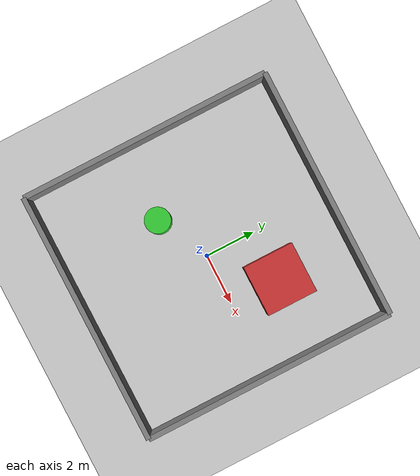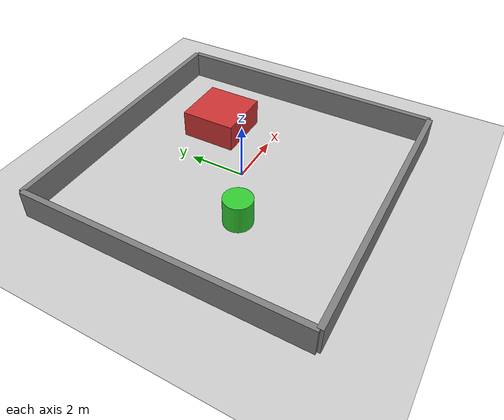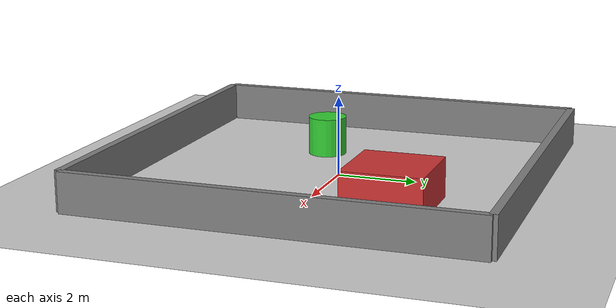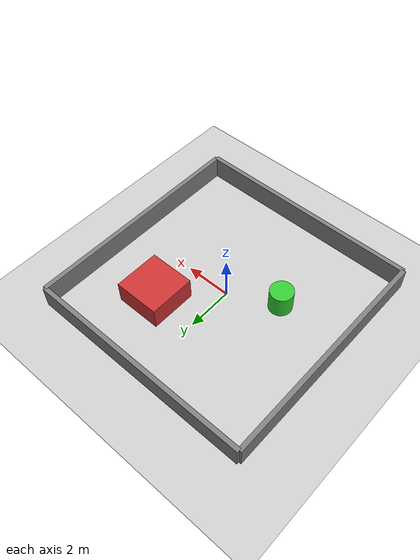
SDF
<?xml version="1.0" ?>
<sdf version="1.8">
  <world name="maze_world">
    <!-- Physics & Graphics Systems -->
    <plugin filename="gz-sim-physics-system" name="gz::sim::systems::Physics"></plugin>
    <plugin filename="gz-sim-user-commands-system" name="gz::sim::systems::UserCommands"></plugin>
    <plugin filename="gz-sim-scene-broadcaster-system" name="gz::sim::systems::SceneBroadcaster"></plugin>
    <plugin filename="gz-sim-sensors-system" name="gz::sim::systems::Sensors">
      <render_engine>ogre2</render_engine>
    </plugin>

    <!-- Global Scene Lighting -->
    <scene>
      <ambient>0.8 0.8 0.8 1.0</ambient>
      <background>0.5 0.5 0.5 1.0</background>
      <shadows>false</shadows>
    </scene>

    <!-- Light -->
    <light type="directional" name="sun">
      <cast_shadows>false</cast_shadows>
      <pose>0 0 10 0 0 0</pose>
      <diffuse>0.8 0.8 0.8 1</diffuse>
      <specular>0.2 0.2 0.2 1</specular>
      <attenuation>
        <range>1000</range>
        <constant>0.9</constant>
        <linear>0.01</linear>
        <quadratic>0.001</quadratic>
      </attenuation>
      <direction>-0.5 0.1 -0.9</direction>
    </light>

    <!-- Ground -->
    <model name="ground_plane">
      <static>true</static>
      <link name="link">
        <collision name="collision">
          <geometry><plane><normal>0 0 1</normal><size>100 100</size></plane></geometry>
        </collision>
        <visual name="visual">
          <geometry><plane><normal>0 0 1</normal><size>100 100</size></plane></geometry>
          <material>
            <ambient>0.8 0.8 0.8 1</ambient>
            <diffuse>0.8 0.8 0.8 1</diffuse>
            <specular>0.8 0.8 0.8 1</specular>
          </material>
        </visual>
      </link>
    </model>

    <!-- OUTER ARENA WALLS -->
    <model name="wall_north">
      <static>true</static>
      <pose>0 5 0.5 0 0 0</pose>
      <link name="link">
        <collision name="collision"><geometry><box><size>10 0.2 1</size></box></geometry></collision>
        <visual name="visual">
          <geometry><box><size>10 0.2 1</size></box></geometry>
          <material>
            <ambient>0.3 0.3 0.3 1</ambient>
            <diffuse>0.5 0.5 0.5 1</diffuse>
          </material>
        </visual>
      </link>
    </model>

    <model name="wall_south">
      <static>true</static>
      <pose>0 -5 0.5 0 0 0</pose>
      <link name="link">
        <collision name="collision"><geometry><box><size>10 0.2 1</size></box></geometry></collision>
        <visual name="visual">
          <geometry><box><size>10 0.2 1</size></box></geometry>
          <material>
            <ambient>0.3 0.3 0.3 1</ambient>
            <diffuse>0.5 0.5 0.5 1</diffuse>
          </material>
        </visual>
      </link>
    </model>

    <model name="wall_east">
      <static>true</static>
      <pose>5 0 0.5 0 0 1.5708</pose>
      <link name="link">
        <collision name="collision"><geometry><box><size>10 0.2 1</size></box></geometry></collision>
        <visual name="visual">
          <geometry><box><size>10 0.2 1</size></box></geometry>
          <material>
            <ambient>0.3 0.3 0.3 1</ambient>
            <diffuse>0.5 0.5 0.5 1</diffuse>
          </material>
        </visual>
      </link>
    </model>

    <model name="wall_west">
      <static>true</static>
      <pose>-5 0 0.5 0 0 1.5708</pose>
      <link name="link">
        <collision name="collision"><geometry><box><size>10 0.2 1</size></box></geometry></collision>
        <visual name="visual">
          <geometry><box><size>10 0.2 1</size></box></geometry>
          <material>
            <ambient>0.3 0.3 0.3 1</ambient>
            <diffuse>0.5 0.5 0.5 1</diffuse>
          </material>
        </visual>
      </link>
    </model>

    <!-- INNER OBSTACLES (The Maze) -->
    <model name="obstacle_center">
      <static>true</static>
      <pose>2 2 0.5 0 0 0</pose>
      <link name="link">
        <collision name="collision"><geometry><box><size>2 2 1</size></box></geometry></collision>
        <visual name="visual">
          <geometry><box><size>2 2 1</size></box></geometry>
          <material>
            <ambient>0.8 0.2 0.2 1</ambient>
            <diffuse>0.8 0.2 0.2 1</diffuse>
          </material>
        </visual>
      </link>
    </model>

    <model name="obstacle_pillar">
      <static>true</static>
      <pose>-2 -1 0.5 0 0 0</pose>
      <link name="link">
        <collision name="collision"><geometry><cylinder><radius>0.5</radius><length>1</length></cylinder></geometry></collision>
        <visual name="visual">
          <geometry><cylinder><radius>0.5</radius><length>1</length></cylinder></geometry>
          <material>
            <ambient>0.2 0.8 0.2 1</ambient>
            <diffuse>0.2 0.8 0.2 1</diffuse>
          </material>
        </visual>
      </link>
    </model>

  </world>
</sdf>
